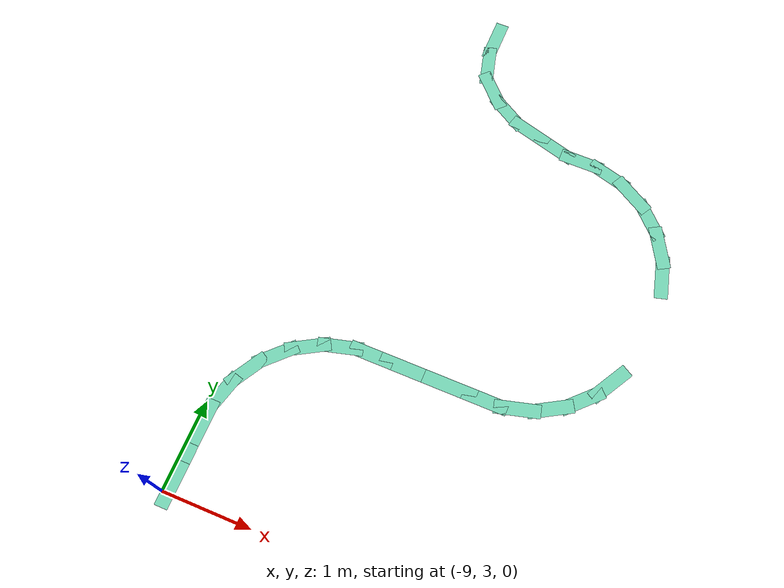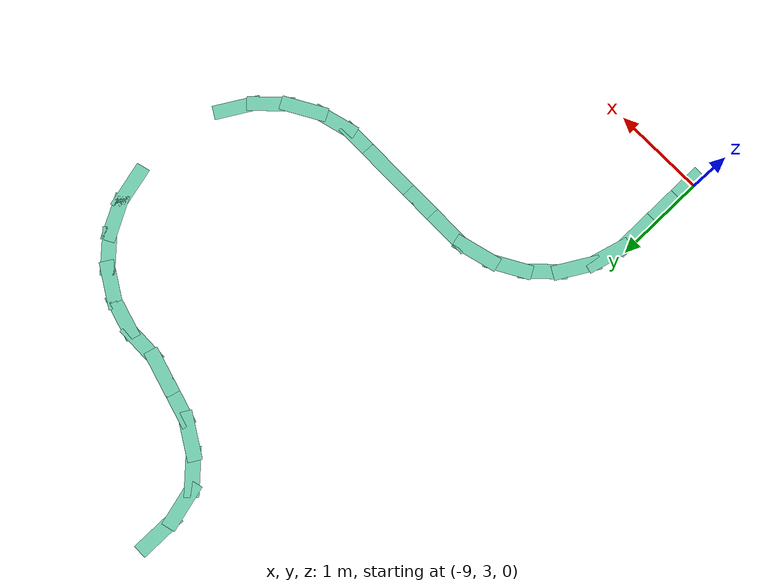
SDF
<sdf version="1.6">
 <model name="pomdp_path">
  <pose>0.697999 -0.110454 0 0 -0 0</pose>
  <link name="Wall_100">
   <collision name="Wall_100_Collision">
    <geometry><box><size>0.5 0.15 0</size></box></geometry>
    <pose>0 0 0.0001 0 -0 0</pose>
   </collision>
   <visual name="Wall_100_Visual">
    <pose>0 0 0.0001 0 -0 0</pose>
    <geometry><box><size>0.5 0.15 0</size></box></geometry>
    <material>
     <script><uri>file://media/materials/scripts/gazebo.material</uri><name>Gazebo/Grey</name></script>
     <ambient>0.435294 0.796078 0.67451 1</ambient>
    </material>
    <meta><layer>0</layer></meta>
   </visual>
   <pose>-8.01598 8.51342 0 0 -0 -0.523599</pose>
  </link>
  <link name="Wall_101">
   <collision name="Wall_101_Collision">
    <geometry><box><size>0.5 0.15 0</size></box></geometry>
    <pose>0 0 0.0001 0 -0 0</pose>
   </collision>
   <visual name="Wall_101_Visual">
    <pose>0 0 0.0001 0 -0 0</pose>
    <geometry><box><size>0.5 0.15 0</size></box></geometry>
    <material>
     <script><uri>file://media/materials/scripts/gazebo.material</uri><name>Gazebo/Grey</name></script>
     <ambient>0.435294 0.796078 0.67451 1</ambient>
    </material>
    <meta><layer>0</layer></meta>
   </visual>
   <pose>-7.69538 8.38063 0 0 -0 -0.261799</pose>
  </link>
  <link name="Wall_102">
   <collision name="Wall_102_Collision">
    <geometry><box><size>0.5 0.15 0</size></box></geometry>
    <pose>0 0 0.0001 0 -0 0</pose>
   </collision>
   <visual name="Wall_102_Visual">
    <pose>0 0 0.0001 0 -0 0</pose>
    <geometry><box><size>0.5 0.15 0</size></box></geometry>
    <material>
     <script><uri>file://media/materials/scripts/gazebo.material</uri><name>Gazebo/Grey</name></script>
     <ambient>0.435294 0.796078 0.67451 1</ambient>
    </material>
    <meta><layer>0</layer></meta>
   </visual>
   <pose>-7.35731 8.29004 0 0 -0 -0.261799</pose>
  </link>
  <link name="Wall_103">
   <collision name="Wall_103_Collision">
    <geometry><box><size>0.5 0.15 0</size></box></geometry>
    <pose>0 0 0.0001 0 -0 0</pose>
   </collision>
   <visual name="Wall_103_Visual">
    <pose>0 0 0.0001 0 -0 0</pose>
    <geometry><box><size>0.5 0.15 0</size></box></geometry>
    <material>
     <script><uri>file://media/materials/scripts/gazebo.material</uri><name>Gazebo/Grey</name></script>
     <ambient>0.435294 0.796078 0.67451 1</ambient>
    </material>
    <meta><layer>0</layer></meta>
   </visual>
   <pose>-7.01327 8.24475 0 0 -0 0</pose>
  </link>
  <link name="Wall_104">
   <collision name="Wall_104_Collision">
    <geometry><box><size>0.5 0.15 0</size></box></geometry>
    <pose>0 0 0.0001 0 -0 0</pose>
   </collision>
   <visual name="Wall_104_Visual">
    <pose>0 0 0.0001 0 -0 0</pose>
    <geometry><box><size>0.5 0.15 0</size></box></geometry>
    <material>
     <script><uri>file://media/materials/scripts/gazebo.material</uri><name>Gazebo/Grey</name></script>
     <ambient>0.435294 0.796078 0.67451 1</ambient>
    </material>
    <meta><layer>0</layer></meta>
   </visual>
   <pose>-6.66924 8.19946 0 0 -0 -0.261799</pose>
  </link>
  <link name="Wall_105">
   <collision name="Wall_105_Collision">
    <geometry><box><size>0.5 0.15 0</size></box></geometry>
    <pose>0 0 0.0001 0 -0 0</pose>
   </collision>
   <visual name="Wall_105_Visual">
    <pose>0 0 0.0001 0 -0 0</pose>
    <geometry><box><size>0.5 0.15 0</size></box></geometry>
    <material>
     <script><uri>file://media/materials/scripts/gazebo.material</uri><name>Gazebo/Grey</name></script>
     <ambient>0.435294 0.796078 0.67451 1</ambient>
    </material>
    <meta><layer>0</layer></meta>
   </visual>
   <pose>-6.34865 8.06666 0 0 -0 -0.523599</pose>
  </link>
  <link name="Wall_107">
   <collision name="Wall_107_Collision">
    <geometry><box><size>0.5 0.15 0</size></box></geometry>
    <pose>0 0 0.0001 0 -0 0</pose>
   </collision>
   <visual name="Wall_107_Visual">
    <pose>0 0 0.0001 0 -0 0</pose>
    <geometry><box><size>0.5 0.15 0</size></box></geometry>
    <material>
     <script><uri>file://media/materials/scripts/gazebo.material</uri><name>Gazebo/Grey</name></script>
     <ambient>0.435294 0.796078 0.67451 1</ambient>
    </material>
    <meta><layer>0</layer></meta>
   </visual>
   <pose>-6.07335 7.85542 0 0 -0 -0.785398</pose>
  </link>
  <link name="Wall_108">
   <collision name="Wall_108_Collision">
    <geometry><box><size>0.5 0.15 0</size></box></geometry>
    <pose>0 0 0.0001 0 -0 0</pose>
   </collision>
   <visual name="Wall_108_Visual">
    <pose>0 0 0.0001 0 -0 0</pose>
    <geometry><box><size>0.5 0.15 0</size></box></geometry>
    <material>
     <script><uri>file://media/materials/scripts/gazebo.material</uri><name>Gazebo/Grey</name></script>
     <ambient>0.435294 0.796078 0.67451 1</ambient>
    </material>
    <meta><layer>0</layer></meta>
   </visual>
   <pose>-5.8621 7.58012 0 0 -0 -1.0472</pose>
  </link>
  <link name="Wall_109">
   <collision name="Wall_109_Collision">
    <geometry><box><size>0.5 0.15 0</size></box></geometry>
    <pose>0 0 0.0001 0 -0 0</pose>
   </collision>
   <visual name="Wall_109_Visual">
    <pose>0 0 0.0001 0 -0 0</pose>
    <geometry><box><size>0.5 0.15 0</size></box></geometry>
    <material>
     <script><uri>file://media/materials/scripts/gazebo.material</uri><name>Gazebo/Grey</name></script>
     <ambient>0.435294 0.796078 0.67451 1</ambient>
    </material>
    <meta><layer>0</layer></meta>
   </visual>
   <pose>-5.72931 7.25953 0 0 -0 -1.309</pose>
  </link>
  <link name="Wall_114">
   <collision name="Wall_114_Collision">
    <geometry><box><size>0.5 0.15 0</size></box></geometry>
    <pose>0 0 0.0001 0 -0 0</pose>
   </collision>
   <visual name="Wall_114_Visual">
    <pose>0 0 0.0001 0 -0 0</pose>
    <geometry><box><size>0.5 0.15 0</size></box></geometry>
    <material>
     <script><uri>file://media/materials/scripts/gazebo.material</uri><name>Gazebo/Grey</name></script>
     <ambient>0.435294 0.796078 0.67451 1</ambient>
    </material>
    <meta><layer>0</layer></meta>
   </visual>
   <pose>-5.8621 5.90086 0 0 -0 -2.0944</pose>
  </link>
  <link name="Wall_115">
   <collision name="Wall_115_Collision">
    <geometry><box><size>0.5 0.15 0</size></box></geometry>
    <pose>0 0 0.0001 0 -0 0</pose>
   </collision>
   <visual name="Wall_115_Visual">
    <pose>0 0 0.0001 0 -0 0</pose>
    <geometry><box><size>0.5 0.15 0</size></box></geometry>
    <material>
     <script><uri>file://media/materials/scripts/gazebo.material</uri><name>Gazebo/Grey</name></script>
     <ambient>0.435294 0.796078 0.67451 1</ambient>
    </material>
    <meta><layer>0</layer></meta>
   </visual>
   <pose>-6.07335 5.62556 0 0 -0 -2.35619</pose>
  </link>
  <link name="Wall_116">
   <collision name="Wall_116_Collision">
    <geometry><box><size>0.5 0.15 0</size></box></geometry>
    <pose>0 0 0.0001 0 -0 0</pose>
   </collision>
   <visual name="Wall_116_Visual">
    <pose>0 0 0.0001 0 -0 0</pose>
    <geometry><box><size>0.5 0.15 0</size></box></geometry>
    <material>
     <script><uri>file://media/materials/scripts/gazebo.material</uri><name>Gazebo/Grey</name></script>
     <ambient>0.435294 0.796078 0.67451 1</ambient>
    </material>
    <meta><layer>0</layer></meta>
   </visual>
   <pose>-6.34865 5.41432 0 0 -0 -2.61799</pose>
  </link>
  <link name="Wall_117">
   <collision name="Wall_117_Collision">
    <geometry><box><size>0.5 0.15 0</size></box></geometry>
    <pose>0 0 0.0001 0 -0 0</pose>
   </collision>
   <visual name="Wall_117_Visual">
    <pose>0 0 0.0001 0 -0 0</pose>
    <geometry><box><size>0.5 0.15 0</size></box></geometry>
    <material>
     <script><uri>file://media/materials/scripts/gazebo.material</uri><name>Gazebo/Grey</name></script>
     <ambient>0.435294 0.796078 0.67451 1</ambient>
    </material>
    <meta><layer>0</layer></meta>
   </visual>
   <pose>-6.66924 5.28153 0 0 -0 -2.87979</pose>
  </link>
  <link name="Wall_118">
   <collision name="Wall_118_Collision">
    <geometry><box><size>0.5 0.15 0</size></box></geometry>
    <pose>0 0 0.0001 0 -0 0</pose>
   </collision>
   <visual name="Wall_118_Visual">
    <pose>0 0 0.0001 0 -0 0</pose>
    <geometry><box><size>0.5 0.15 0</size></box></geometry>
    <material>
     <script><uri>file://media/materials/scripts/gazebo.material</uri><name>Gazebo/Grey</name></script>
     <ambient>0.435294 0.796078 0.67451 1</ambient>
    </material>
    <meta><layer>0</layer></meta>
   </visual>
   <pose>-7.01327 5.23623 0 0 -0 3.14159</pose>
  </link>
  <link name="Wall_119">
   <collision name="Wall_119_Collision">
    <geometry><box><size>0.75 0.15 0</size></box></geometry>
    <pose>0 0 0.0001 0 -0 0</pose>
   </collision>
   <visual name="Wall_119_Visual">
    <pose>0 0 0.0001 0 -0 0</pose>
    <geometry><box><size>0.75 0.15 0</size></box></geometry>
    <material>
     <script><uri>file://media/materials/scripts/gazebo.material</uri><name>Gazebo/Grey</name></script>
     <ambient>0.435294 0.796078 0.67451 1</ambient>
    </material>
    <meta><layer>0</layer></meta>
   </visual>
   <pose>-7.48827 5.23623 0 0 -0 3.14159</pose>
  </link>
  <link name="Wall_120">
   <collision name="Wall_120_Collision">
    <geometry><box><size>0.5 0.15 0</size></box></geometry>
    <pose>0 0 0.0001 0 -0 0</pose>
   </collision>
   <visual name="Wall_120_Visual">
    <pose>0 0 0.0001 0 -0 0</pose>
    <geometry><box><size>0.5 0.15 0</size></box></geometry>
    <material>
     <script><uri>file://media/materials/scripts/gazebo.material</uri><name>Gazebo/Grey</name></script>
     <ambient>0.435294 0.796078 0.67451 1</ambient>
    </material>
    <meta><layer>0</layer></meta>
   </visual>
   <pose>-7.96327 5.23623 0 0 -0 3.14159</pose>
  </link>
  <link name="Wall_121">
   <collision name="Wall_121_Collision">
    <geometry><box><size>0.5 0.15 0</size></box></geometry>
    <pose>0 0 0.0001 0 -0 0</pose>
   </collision>
   <visual name="Wall_121_Visual">
    <pose>0 0 0.0001 0 -0 0</pose>
    <geometry><box><size>0.5 0.15 0</size></box></geometry>
    <material>
     <script><uri>file://media/materials/scripts/gazebo.material</uri><name>Gazebo/Grey</name></script>
     <ambient>0.435294 0.796078 0.67451 1</ambient>
    </material>
    <meta><layer>0</layer></meta>
   </visual>
   <pose>-8.31327 5.23623 0 0 -0 3.14159</pose>
  </link>
  <link name="Wall_124">
   <collision name="Wall_124_Collision">
    <geometry><box><size>0.5 0.15 0</size></box></geometry>
    <pose>0 0 0.0001 0 -0 0</pose>
   </collision>
   <visual name="Wall_124_Visual">
    <pose>0 0 0.0001 0 -0 0</pose>
    <geometry><box><size>0.5 0.15 0</size></box></geometry>
    <material>
     <script><uri>file://media/materials/scripts/gazebo.material</uri><name>Gazebo/Grey</name></script>
     <ambient>0.435294 0.796078 0.67451 1</ambient>
    </material>
    <meta><layer>0</layer></meta>
   </visual>
   <pose>-8.65731 5.19094 0 0 -0 -2.87979</pose>
  </link>
  <link name="Wall_125">
   <collision name="Wall_125_Collision">
    <geometry><box><size>0.5 0.15 0</size></box></geometry>
    <pose>0 0 0.0001 0 -0 0</pose>
   </collision>
   <visual name="Wall_125_Visual">
    <pose>0 0 0.0001 0 -0 0</pose>
    <geometry><box><size>0.5 0.15 0</size></box></geometry>
    <material>
     <script><uri>file://media/materials/scripts/gazebo.material</uri><name>Gazebo/Grey</name></script>
     <ambient>0.435294 0.796078 0.67451 1</ambient>
    </material>
    <meta><layer>0</layer></meta>
   </visual>
   <pose>-8.9779 5.05815 0 0 -0 -2.61799</pose>
  </link>
  <link name="Wall_126">
   <collision name="Wall_126_Collision">
    <geometry><box><size>0.5 0.15 0</size></box></geometry>
    <pose>0 0 0.0001 0 -0 0</pose>
   </collision>
   <visual name="Wall_126_Visual">
    <pose>0 0 0.0001 0 -0 0</pose>
    <geometry><box><size>0.5 0.15 0</size></box></geometry>
    <material>
     <script><uri>file://media/materials/scripts/gazebo.material</uri><name>Gazebo/Grey</name></script>
     <ambient>0.435294 0.796078 0.67451 1</ambient>
    </material>
    <meta><layer>0</layer></meta>
   </visual>
   <pose>-9.2532 4.8469 0 0 -0 -2.35619</pose>
  </link>
  <link name="Wall_127">
   <collision name="Wall_127_Collision">
    <geometry><box><size>0.5 0.15 0</size></box></geometry>
    <pose>0 0 0.0001 0 -0 0</pose>
   </collision>
   <visual name="Wall_127_Visual">
    <pose>0 0 0.0001 0 -0 0</pose>
    <geometry><box><size>0.5 0.15 0</size></box></geometry>
    <material>
     <script><uri>file://media/materials/scripts/gazebo.material</uri><name>Gazebo/Grey</name></script>
     <ambient>0.435294 0.796078 0.67451 1</ambient>
    </material>
    <meta><layer>0</layer></meta>
   </visual>
   <pose>-9.46444 4.57161 0 0 -0 -2.0944</pose>
  </link>
  <link name="Wall_128">
   <collision name="Wall_128_Collision">
    <geometry><box><size>0.5 0.15 0</size></box></geometry>
    <pose>0 0 0.0001 0 -0 0</pose>
   </collision>
   <visual name="Wall_128_Visual">
    <pose>0 0 0.0001 0 -0 0</pose>
    <geometry><box><size>0.5 0.15 0</size></box></geometry>
    <material>
     <script><uri>file://media/materials/scripts/gazebo.material</uri><name>Gazebo/Grey</name></script>
     <ambient>0.435294 0.796078 0.67451 1</ambient>
    </material>
    <meta><layer>0</layer></meta>
   </visual>
   <pose>-9.59724 4.25101 0 0 -0 -1.8326</pose>
  </link>
  <link name="Wall_129">
   <collision name="Wall_129_Collision">
    <geometry><box><size>0.5 0.15 0</size></box></geometry>
    <pose>0 0 0.0001 0 -0 0</pose>
   </collision>
   <visual name="Wall_129_Visual">
    <pose>0 0 0.0001 0 -0 0</pose>
    <geometry><box><size>0.5 0.15 0</size></box></geometry>
    <material>
     <script><uri>file://media/materials/scripts/gazebo.material</uri><name>Gazebo/Grey</name></script>
     <ambient>0.435294 0.796078 0.67451 1</ambient>
    </material>
    <meta><layer>0</layer></meta>
   </visual>
   <pose>-9.64253 3.90698 0 0 -0 -1.5708</pose>
  </link>
  <link name="Wall_130">
   <collision name="Wall_130_Collision">
    <geometry><box><size>0.5 0.15 0</size></box></geometry>
    <pose>0 0 0.0001 0 -0 0</pose>
   </collision>
   <visual name="Wall_130_Visual">
    <pose>0 0 0.0001 0 -0 0</pose>
    <geometry><box><size>0.5 0.15 0</size></box></geometry>
    <material>
     <script><uri>file://media/materials/scripts/gazebo.material</uri><name>Gazebo/Grey</name></script>
     <ambient>0.435294 0.796078 0.67451 1</ambient>
    </material>
    <meta><layer>0</layer></meta>
   </visual>
   <pose>-9.64253 3.55698 0 0 -0 -1.5708</pose>
  </link>
  <link name="Wall_131">
   <collision name="Wall_131_Collision">
    <geometry><box><size>0.5 0.15 0</size></box></geometry>
    <pose>0 0 0.0001 0 -0 0</pose>
   </collision>
   <visual name="Wall_131_Visual">
    <pose>0 0 0.0001 0 -0 0</pose>
    <geometry><box><size>0.5 0.15 0</size></box></geometry>
    <material>
     <script><uri>file://media/materials/scripts/gazebo.material</uri><name>Gazebo/Grey</name></script>
     <ambient>0.435294 0.796078 0.67451 1</ambient>
    </material>
    <meta><layer>0</layer></meta>
   </visual>
   <pose>-9.64253 3.20698 0 0 -0 -1.5708</pose>
  </link>
  <link name="Wall_92">
   <collision name="Wall_92_Collision">
    <geometry><box><size>0.5 0.15 0</size></box></geometry>
    <pose>0 0 0.0001 0 -0 0</pose>
   </collision>
   <visual name="Wall_92_Visual">
    <pose>0 0 0.0001 0 -0 0</pose>
    <geometry><box><size>0.5 0.15 0</size></box></geometry>
    <material>
     <script><uri>file://media/materials/scripts/gazebo.material</uri><name>Gazebo/Grey</name></script>
     <ambient>0.435294 0.796078 0.67451 1</ambient>
    </material>
    <meta><layer>0</layer></meta>
   </visual>
   <pose>-8.5056 9.36148 0 0 -0 -1.5708</pose>
  </link>
  <link name="Wall_98">
   <collision name="Wall_98_Collision">
    <geometry><box><size>0.5 0.15 0</size></box></geometry>
    <pose>0 0 0.0001 0 -0 0</pose>
   </collision>
   <visual name="Wall_98_Visual">
    <pose>0 0 0.0001 0 -0 0</pose>
    <geometry><box><size>0.5 0.15 0</size></box></geometry>
    <material>
     <script><uri>file://media/materials/scripts/gazebo.material</uri><name>Gazebo/Grey</name></script>
     <ambient>0.435294 0.796078 0.67451 1</ambient>
    </material>
    <meta><layer>0</layer></meta>
   </visual>
   <pose>-8.46031 9.01745 0 0 -0 -1.309</pose>
  </link>
  <link name="Wall_99">
   <collision name="Wall_99_Collision">
    <geometry><box><size>0.5 0.15 0</size></box></geometry>
    <pose>0 0 0.0001 0 -0 0</pose>
   </collision>
   <visual name="Wall_99_Visual">
    <pose>0 0 0.0001 0 -0 0</pose>
    <geometry><box><size>0.5 0.15 0</size></box></geometry>
    <material>
     <script><uri>file://media/materials/scripts/gazebo.material</uri><name>Gazebo/Grey</name></script>
     <ambient>0.435294 0.796078 0.67451 1</ambient>
    </material>
    <meta><layer>0</layer></meta>
   </visual>
   <pose>-8.29127 8.72466 0 0 -0 -0.785398</pose>
  </link>
  <static>1</static>
 </model>
</sdf>
